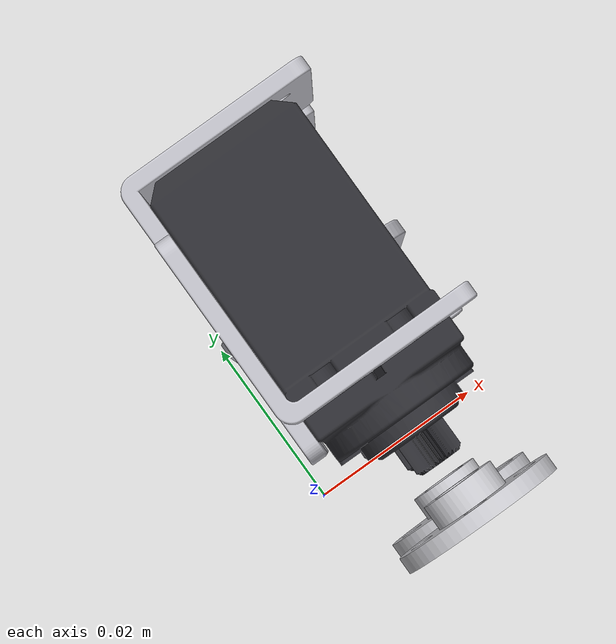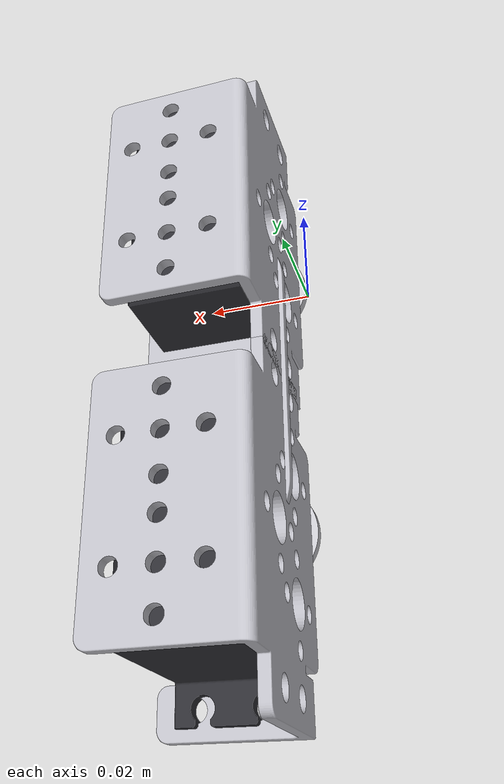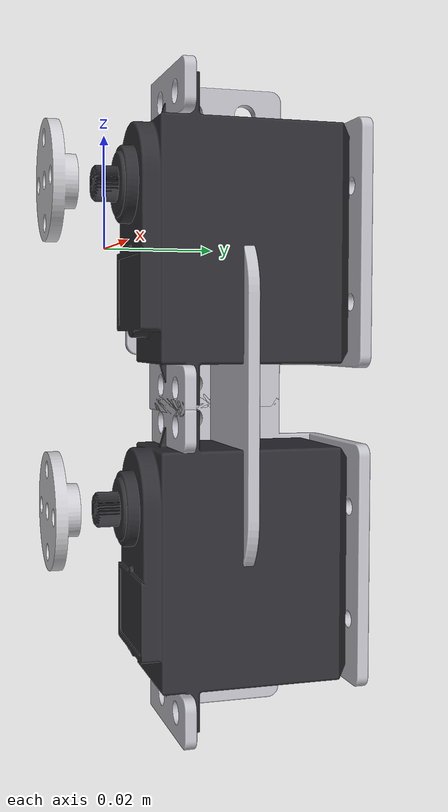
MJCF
<?xml version="1.0" encoding="utf-8"?>
<mujoco model="thigh_assembly">
  <compiler angle="radian" meshdir="." autolimits="true"/>
  <visual><global offwidth="1024" offheight="1024"/><headlight ambient="0.55 0.55 0.55" diffuse="0.6 0.6 0.6" specular="0.2 0.2 0.2"/></visual>
  <default><default class="visual"><geom type="mesh" contype="0" conaffinity="0" group="2" density="0"/></default>
    <default class="collision"><geom type="mesh" group="3"/></default></default>
  <asset>
    <mesh name="multi" file="多功能/多功能支架.STL" scale="0.001 0.001 0.001"/>
    <mesh name="straight" file="一字/一字支架.STL" scale="0.001 0.001 0.001"/>
    <mesh name="servo" file="舵机/舵机.STL" scale="0.001 0.001 0.001"/>
    <mesh name="horn" file="金属舵盘/金属舵盘.STL" scale="0.001 0.001 0.001"/>
    <material name="bracket" rgba="0.75 0.75 0.78 1"/><material name="dark" rgba="0.18 0.18 0.20 1"/><material name="horn" rgba="0.80 0.80 0.82 1"/>
  </asset>
  <worldbody>
    <body name="multi_0" pos="0.013500 0.022000 0.000000" quat="0.000000 0.707107 0.000000 0.707107">
      <geom name="multi_0_v" mesh="multi" class="visual" material="bracket" pos="-0.029 -0.0185 -0.0125"/>
      <geom name="multi_0_c" mesh="multi" class="collision" pos="-0.029 -0.0185 -0.0125" density="2700"/>
    </body>
    <body name="servo_1" pos="0.012750 0.017000 0.000000" quat="0.000000 0.000000 -0.707107 0.707107">
      <geom name="servo_1_v" mesh="servo" class="visual" material="dark" pos="-0.009752 -0.027 -0.0215"/>
      <geom name="servo_1_c" mesh="servo" class="collision" pos="-0.009752 -0.027 -0.0215" density="2700"/>
    </body>
    <body name="horn_2" pos="0.012750 -0.010000 0.010000" quat="0.000000 0.000000 1.000000 0.000000">
      <geom name="horn_2_v" mesh="horn" class="visual" material="horn" pos="-0.01 -0.0026 -0.01"/>
      <geom name="horn_2_c" mesh="horn" class="collision" pos="-0.01 -0.0026 -0.01" density="2700"/>
    </body>
    <body name="multi_3" pos="0.013500 0.022000 -0.055000" quat="0.000000 0.707107 0.000000 0.707107">
      <geom name="multi_3_v" mesh="multi" class="visual" material="bracket" pos="-0.029 -0.0185 -0.0125"/>
      <geom name="multi_3_c" mesh="multi" class="collision" pos="-0.029 -0.0185 -0.0125" density="2700"/>
    </body>
    <body name="servo_4" pos="0.012750 0.017000 -0.055000" quat="0.000000 0.000000 -0.707107 0.707107">
      <geom name="servo_4_v" mesh="servo" class="visual" material="dark" pos="-0.009752 -0.027 -0.0215"/>
      <geom name="servo_4_c" mesh="servo" class="collision" pos="-0.009752 -0.027 -0.0215" density="2700"/>
    </body>
    <body name="horn_5" pos="0.012750 -0.010000 -0.045000" quat="0.000000 0.000000 1.000000 0.000000">
      <geom name="horn_5_v" mesh="horn" class="visual" material="horn" pos="-0.01 -0.0026 -0.01"/>
      <geom name="horn_5_c" mesh="horn" class="collision" pos="-0.01 -0.0026 -0.01" density="2700"/>
    </body>
    <body name="straight_6" pos="0.012750 0.020000 -0.027500" quat="-0.500000 0.500000 0.500000 0.500000">
      <geom name="straight_6_v" mesh="straight" class="visual" material="bracket" pos="-0.0315 -0.0125 -0.001"/>
      <geom name="straight_6_c" mesh="straight" class="collision" pos="-0.0315 -0.0125 -0.001" density="2700"/>
    </body>
  </worldbody>
</mujoco>
